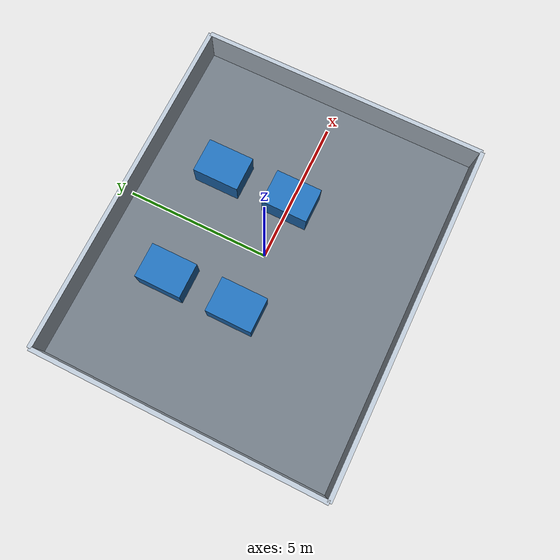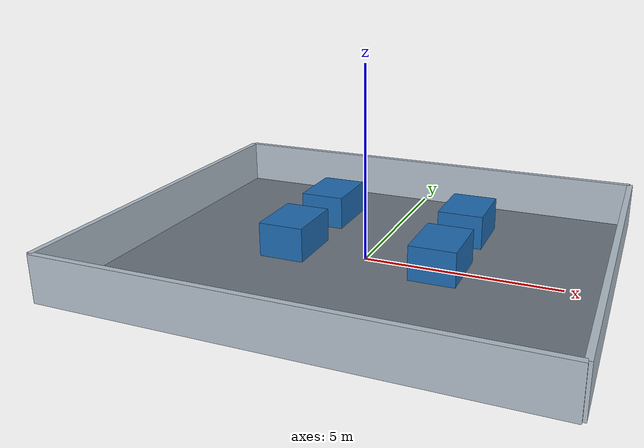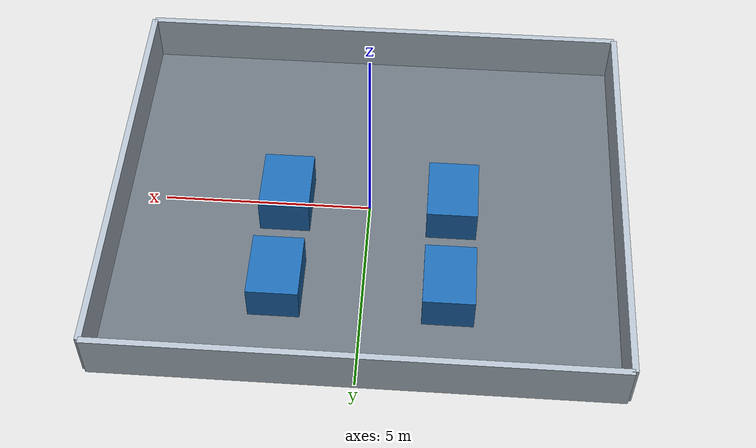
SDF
<?xml version="1.0"?>
<!-- Original primitive geometry; no external meshes/textures. SPDX-License-Identifier: Apache-2.0 -->
<sdf version="1.6">
  <world name="robotless_warehouse">
    <gravity>0 0 -9.81</gravity>
    <physics name="default" type="ode">
      <max_step_size>0.001</max_step_size>
      <real_time_update_rate>1000</real_time_update_rate>
    </physics>
    <scene><ambient>0.65 0.65 0.65 1</ambient><background>0.12 0.17 0.22 1</background></scene>
    <light name="warehouse_light" type="directional">
      <pose>0 0 8 0 0 0</pose><diffuse>0.9 0.9 0.9 1</diffuse>
      <specular>0.2 0.2 0.2 1</specular><direction>-0.3 -0.4 -1</direction>
      <cast_shadows>true</cast_shadows>
    </light>
    <model name="floor">
      <static>true</static>
      <link name="floor_link">
        <collision name="collision"><geometry><plane><normal>0 0 1</normal><size>12 10</size></plane></geometry></collision>
        <visual name="visual"><geometry><plane><normal>0 0 1</normal><size>12 10</size></plane></geometry>
          <material><ambient>0.42 0.46 0.50 1</ambient><diffuse>0.42 0.46 0.50 1</diffuse></material>
        </visual>
      </link>
    </model>
    <model name="north_wall">
      <static>true</static><pose>0 5 0.6 0 0 0</pose><link name="wall">
        <collision name="collision"><geometry><box><size>12 0.15 1.2</size></box></geometry></collision>
        <visual name="visual"><geometry><box><size>12 0.15 1.2</size></box></geometry><material><ambient>0.7 0.75 0.8 1</ambient><diffuse>0.7 0.75 0.8 1</diffuse></material></visual>
      </link>
    </model>
    <model name="south_wall">
      <static>true</static><pose>0 -5 0.6 0 0 0</pose><link name="wall">
        <collision name="collision"><geometry><box><size>12 0.15 1.2</size></box></geometry></collision>
        <visual name="visual"><geometry><box><size>12 0.15 1.2</size></box></geometry><material><ambient>0.7 0.75 0.8 1</ambient><diffuse>0.7 0.75 0.8 1</diffuse></material></visual>
      </link>
    </model>
    <model name="east_wall">
      <static>true</static><pose>6 0 0.6 0 0 0</pose><link name="wall">
        <collision name="collision"><geometry><box><size>0.15 10 1.2</size></box></geometry></collision>
        <visual name="visual"><geometry><box><size>0.15 10 1.2</size></box></geometry><material><ambient>0.7 0.75 0.8 1</ambient><diffuse>0.7 0.75 0.8 1</diffuse></material></visual>
      </link>
    </model>
    <model name="west_wall">
      <static>true</static><pose>-6 0 0.6 0 0 0</pose><link name="wall">
        <collision name="collision"><geometry><box><size>0.15 10 1.2</size></box></geometry></collision>
        <visual name="visual"><geometry><box><size>0.15 10 1.2</size></box></geometry><material><ambient>0.7 0.75 0.8 1</ambient><diffuse>0.7 0.75 0.8 1</diffuse></material></visual>
      </link>
    </model>
    <model name="shelf_a">
      <static>true</static><pose>-2 0 0.45 0 0 0</pose><link name="shelf">
        <collision name="collision"><geometry><box><size>1.2 1.6 0.9</size></box></geometry></collision>
        <visual name="visual"><geometry><box><size>1.2 1.6 0.9</size></box></geometry><material><ambient>0.12 0.42 0.70 1</ambient><diffuse>0.12 0.42 0.70 1</diffuse></material></visual>
      </link>
    </model>
    <model name="shelf_b">
      <static>true</static><pose>2 0 0.45 0 0 0</pose><link name="shelf">
        <collision name="collision"><geometry><box><size>1.2 1.6 0.9</size></box></geometry></collision>
        <visual name="visual"><geometry><box><size>1.2 1.6 0.9</size></box></geometry><material><ambient>0.12 0.42 0.70 1</ambient><diffuse>0.12 0.42 0.70 1</diffuse></material></visual>
      </link>
    </model>
    <model name="shelf_c">
      <static>true</static><pose>-2 2.5 0.45 0 0 0</pose><link name="shelf">
        <collision name="collision"><geometry><box><size>1.2 1.6 0.9</size></box></geometry></collision>
        <visual name="visual"><geometry><box><size>1.2 1.6 0.9</size></box></geometry><material><ambient>0.12 0.42 0.70 1</ambient><diffuse>0.12 0.42 0.70 1</diffuse></material></visual>
      </link>
    </model>
    <model name="shelf_d">
      <static>true</static><pose>2 2.5 0.45 0 0 0</pose><link name="shelf">
        <collision name="collision"><geometry><box><size>1.2 1.6 0.9</size></box></geometry></collision>
        <visual name="visual"><geometry><box><size>1.2 1.6 0.9</size></box></geometry><material><ambient>0.12 0.42 0.70 1</ambient><diffuse>0.12 0.42 0.70 1</diffuse></material></visual>
      </link>
    </model>
  </world>
</sdf>
